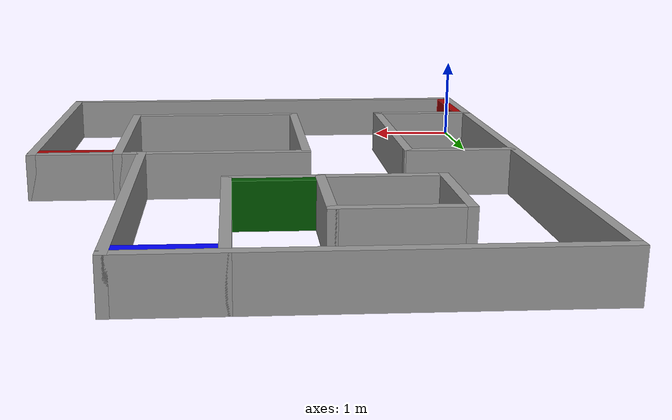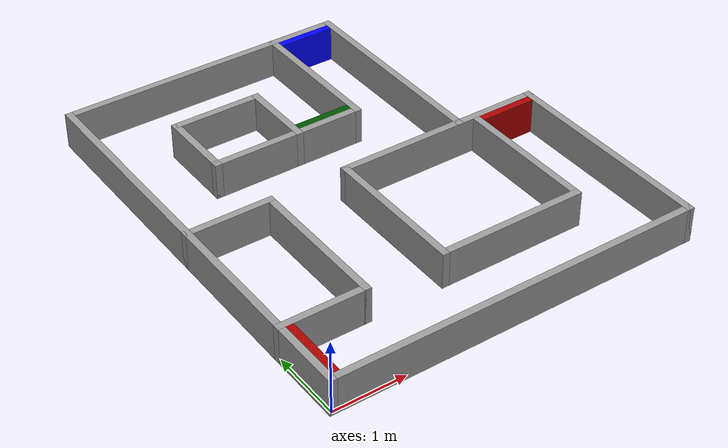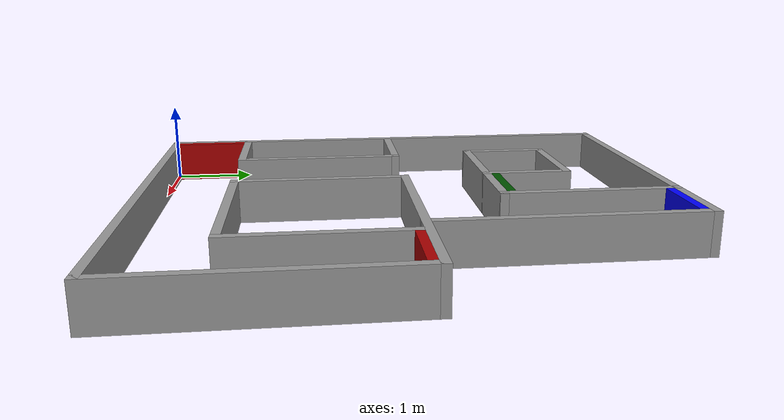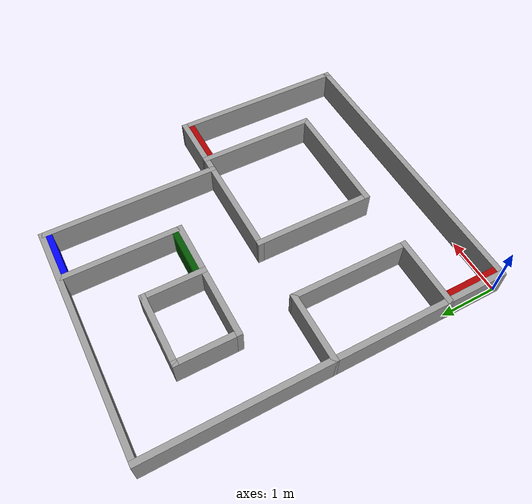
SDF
<?xml version='1.0'?>
<sdf version='1.6'>
  <model name='Bot_Map_3'>
    <pose frame=''>2.575 3 0 0 -0 0</pose>
    <link name='Wall_103'>
      <collision name='Wall_103_Collision'>
        <geometry>
          <box>
            <size>1.25 0.1 0.5</size>
          </box>
        </geometry>
        <pose frame=''>0 0 0.25 0 -0 0</pose>
      </collision>
      <visual name='Wall_103_Visual'>
        <pose frame=''>0 0 0.25 0 -0 0</pose>
        <geometry>
          <box>
            <size>1.25 0.1 0.5</size>
          </box>
        </geometry>
        <material>
          <script>
            <uri>file://media/materials/scripts/gazebo.material</uri>
            <name>Gazebo/Grey</name>
          </script>
          <ambient>0 0 0 1</ambient>
        </material>
        <meta>
          <layer>0</layer>
        </meta>
      </visual>
      <pose frame=''>-2 0 0 0 -0 0</pose>
    </link>
    <link name='Wall_105'>
      <collision name='Wall_105_Collision'>
        <geometry>
          <box>
            <size>1.1 0.1 0.5</size>
          </box>
        </geometry>
        <pose frame=''>0 0 0.25 0 -0 0</pose>
      </collision>
      <visual name='Wall_105_Visual'>
        <pose frame=''>0 0 0.25 0 -0 0</pose>
        <geometry>
          <box>
            <size>1.1 0.1 0.5</size>
          </box>
        </geometry>
        <material>
          <script>
            <uri>file://media/materials/scripts/gazebo.material</uri>
            <name>Gazebo/Grey</name>
          </script>
          <ambient>0 0 0 1</ambient>
        </material>
        <meta>
          <layer>0</layer>
        </meta>
      </visual>
      <pose frame=''>-0.375 1.5 0 0 0 -1.5708</pose>
    </link>
    <link name='Wall_107'>
      <collision name='Wall_107_Collision'>
        <geometry>
          <box>
            <size>3 0.1 0.5</size>
          </box>
        </geometry>
        <pose frame=''>0 0 0.25 0 -0 0</pose>
      </collision>
      <visual name='Wall_107_Visual'>
        <pose frame=''>0 0 0.25 0 -0 0</pose>
        <geometry>
          <box>
            <size>3 0.1 0.5</size>
          </box>
        </geometry>
        <material>
          <script>
            <uri>file://media/materials/scripts/gazebo.material</uri>
            <name>Gazebo/Grey</name>
          </script>
          <ambient>0 0 0 1</ambient>
        </material>
        <meta>
          <layer>0</layer>
        </meta>
      </visual>
      <pose frame=''>1.125 0 0 0 -0 0</pose>
    </link>
    <link name='Wall_109'>
      <collision name='Wall_109_Collision'>
        <geometry>
          <box>
            <size>2.1 0.1 0.5</size>
          </box>
        </geometry>
        <pose frame=''>0 0 0.25 0 -0 0</pose>
      </collision>
      <visual name='Wall_109_Visual'>
        <pose frame=''>0 0 0.25 0 -0 0</pose>
        <geometry>
          <box>
            <size>2.1 0.1 0.5</size>
          </box>
        </geometry>
        <material>
          <script>
            <uri>file://media/materials/scripts/gazebo.material</uri>
            <name>Gazebo/Grey</name>
          </script>
          <ambient>0 0 0 1</ambient>
        </material>
        <meta>
          <layer>0</layer>
        </meta>
      </visual>
      <pose frame=''>-0.325 -1 0 0 0 -1.5708</pose>
    </link>
    <link name='Wall_117'>
      <collision name='Wall_117_Collision'>
        <geometry>
          <box>
            <size>2.1 0.1 0.5</size>
          </box>
        </geometry>
        <pose frame=''>0 0 0.25 0 -0 0</pose>
      </collision>
      <visual name='Wall_117_Visual'>
        <pose frame=''>0 0 0.25 0 -0 0</pose>
        <geometry>
          <box>
            <size>2.1 0.1 0.5</size>
          </box>
        </geometry>
        <material>
          <script>
            <uri>file://media/materials/scripts/gazebo.material</uri>
            <name>Gazebo/Grey</name>
          </script>
          <ambient>0 0 0 1</ambient>
        </material>
        <meta>
          <layer>0</layer>
        </meta>
      </visual>
      <pose frame=''>1.675 -1 0 0 -0 1.5708</pose>
    </link>
    <link name='Wall_119'>
      <collision name='Wall_119_Collision'>
        <geometry>
          <box>
            <size>2.1 0.1 0.5</size>
          </box>
        </geometry>
        <pose frame=''>0 0 0.25 0 -0 0</pose>
      </collision>
      <visual name='Wall_119_Visual'>
        <pose frame=''>0 0 0.25 0 -0 0</pose>
        <geometry>
          <box>
            <size>2.1 0.1 0.5</size>
          </box>
        </geometry>
        <material>
          <script>
            <uri>file://media/materials/scripts/gazebo.material</uri>
            <name>Gazebo/Grey</name>
          </script>
          <ambient>0 0 0 1</ambient>
        </material>
        <meta>
          <layer>0</layer>
        </meta>
      </visual>
      <pose frame=''>0.675 -2 0 0 -0 0</pose>
    </link>
    <link name='Wall_125'>
      <collision name='Wall_125_Collision'>
        <geometry>
          <box>
            <size>3.1 0.1 0.5</size>
          </box>
        </geometry>
        <pose frame=''>0 0 0.25 0 -0 0</pose>
      </collision>
      <visual name='Wall_125_Visual'>
        <pose frame=''>0 0 0.25 0 -0 0</pose>
        <geometry>
          <box>
            <size>3.1 0.1 0.5</size>
          </box>
        </geometry>
        <material>
          <script>
            <uri>file://media/materials/scripts/gazebo.material</uri>
            <name>Gazebo/Grey</name>
          </script>
          <ambient>0 0 0 1</ambient>
        </material>
        <meta>
          <layer>0</layer>
        </meta>
      </visual>
      <pose frame=''>1.425 1.5 0 0 -0 1.5708</pose>
    </link>
    <link name='Wall_127'>
      <collision name='Wall_127_Collision'>
        <geometry>
          <box>
            <size>3.1 0.1 0.5</size>
          </box>
        </geometry>
        <pose frame=''>0 0 0.25 0 -0 0</pose>
      </collision>
      <visual name='Wall_127_Visual'>
        <pose frame=''>0 0 0.25 0 -0 0</pose>
        <geometry>
          <box>
            <size>3.1 0.1 0.5</size>
          </box>
        </geometry>
        <material>
          <script>
            <uri>file://media/materials/scripts/gazebo.material</uri>
            <name>Gazebo/Grey</name>
          </script>
          <ambient>0 0 0 1</ambient>
        </material>
        <meta>
          <layer>0</layer>
        </meta>
      </visual>
      <pose frame=''>2.575 -1.5 0 0 -0 1.5708</pose>
    </link>
    <link name='Wall_44'>
      <collision name='Wall_44_Collision'>
        <geometry>
          <box>
            <size>6.1 0.1 0.5</size>
          </box>
        </geometry>
        <pose frame=''>0 0 0.25 0 -0 0</pose>
      </collision>
      <visual name='Wall_44_Visual'>
        <pose frame=''>0 0 0.25 0 -0 0</pose>
        <geometry>
          <box>
            <size>6.1 0.1 0.5</size>
          </box>
        </geometry>
        <material>
          <script>
            <uri>file://media/materials/scripts/gazebo.material</uri>
            <name>Gazebo/Grey</name>
          </script>
          <ambient>0 0 0 1</ambient>
        </material>
        <meta>
          <layer>0</layer>
        </meta>
      </visual>
      <pose frame=''>-2.575 0 0 0 -0 1.5708</pose>
    </link>
    <link name='Wall_50'>
      <collision name='Wall_50_Collision'>
        <geometry>
          <box>
            <size>1.25 0.1 0.5</size>
          </box>
        </geometry>
        <pose frame=''>0 0 0.25 0 -0 0</pose>
      </collision>
      <visual name='Wall_50_Visual'>
        <pose frame=''>0 0 0.25 0 -0 0</pose>
        <geometry>
          <box>
            <size>1.25 0.1 0.5</size>
          </box>
        </geometry>
        <material>
          <script>
            <uri>file://media/materials/scripts/gazebo.material</uri>
            <name>Gazebo/Grey</name>
          </script>
          <ambient>0 0 0 1</ambient>
        </material>
        <meta>
          <layer>0</layer>
        </meta>
      </visual>
      <pose frame=''>-2 -2 0 0 -0 0</pose>
    </link>
    <link name='Wall_56'>
      <collision name='Wall_56_Collision'>
        <geometry>
          <box>
            <size>2.1 0.1 0.5</size>
          </box>
        </geometry>
        <pose frame=''>0 0 0.25 0 -0 0</pose>
      </collision>
      <visual name='Wall_56_Visual'>
        <pose frame=''>0 0 0.25 0 -0 0</pose>
        <geometry>
          <box>
            <size>2.1 0.1 0.5</size>
          </box>
        </geometry>
        <material>
          <script>
            <uri>file://media/materials/scripts/gazebo.material</uri>
            <name>Gazebo/Grey</name>
          </script>
          <ambient>0 0 0 1</ambient>
        </material>
        <meta>
          <layer>0</layer>
        </meta>
      </visual>
      <pose frame=''>-1.425 -1 0 0 -0 1.5708</pose>
    </link>
    <link name='Wall_58'>
      <collision name='Wall_58_Collision'>
        <geometry>
          <box>
            <size>5.15 0.1 0.5</size>
          </box>
        </geometry>
        <pose frame=''>0 0 0.25 0 -0 0</pose>
      </collision>
      <visual name='Wall_58_Visual'>
        <pose frame=''>0 0 0.25 0 -0 0</pose>
        <geometry>
          <box>
            <size>5.15 0.1 0.5</size>
          </box>
        </geometry>
        <material>
          <script>
            <uri>file://media/materials/scripts/gazebo.material</uri>
            <name>Gazebo/Grey</name>
          </script>
          <ambient>0 0 0 1</ambient>
        </material>
        <meta>
          <layer>0</layer>
        </meta>
      </visual>
      <pose frame=''>0.05 -3 0 0 -0 0</pose>
    </link>
    <link name='Wall_64'>
      <collision name='Wall_64_Collision'>
        <geometry>
          <box>
            <size>4.1 0.1 0.5</size>
          </box>
        </geometry>
        <pose frame=''>0 0 0.25 0 -0 0</pose>
      </collision>
      <visual name='Wall_64_Visual'>
        <pose frame=''>0 0 0.25 0 -0 0</pose>
        <geometry>
          <box>
            <size>4.1 0.1 0.5</size>
          </box>
        </geometry>
        <material>
          <script>
            <uri>file://media/materials/scripts/gazebo.material</uri>
            <name>Gazebo/Grey</name>
          </script>
          <ambient>0 0 0 1</ambient>
        </material>
        <meta>
          <layer>0</layer>
        </meta>
      </visual>
      <pose frame=''>-0.575 3 0 0 -0 0</pose>
    </link>
    <link name='Wall_66'>
      <collision name='Wall_66_Collision'>
        <geometry>
          <box>
            <size>2.1 0.1 0.5</size>
          </box>
        </geometry>
        <pose frame=''>0 0 0.25 0 -0 0</pose>
      </collision>
      <visual name='Wall_66_Visual'>
        <pose frame=''>0 0 0.25 0 -0 0</pose>
        <geometry>
          <box>
            <size>2.1 0.1 0.5</size>
          </box>
        </geometry>
        <material>
          <script>
            <uri>file://media/materials/scripts/gazebo.material</uri>
            <name>Gazebo/Grey</name>
          </script>
          <ambient>0 0 0 1</ambient>
        </material>
        <meta>
          <layer>0</layer>
        </meta>
      </visual>
      <pose frame=''>0.525 2 0 0 0 -1.5708</pose>
    </link>
    <link name='Wall_68'>
      <collision name='Wall_68_Collision'>
        <geometry>
          <box>
            <size>2.2 0.1 0.5</size>
          </box>
        </geometry>
        <pose frame=''>0 0 0.25 0 -0 0</pose>
      </collision>
      <visual name='Wall_68_Visual'>
        <pose frame=''>0 0 0.25 0 -0 0</pose>
        <geometry>
          <box>
            <size>2.2 0.1 0.5</size>
          </box>
        </geometry>
        <material>
          <script>
            <uri>file://media/materials/scripts/gazebo.material</uri>
            <name>Gazebo/Grey</name>
          </script>
          <ambient>0 0 0 1</ambient>
        </material>
        <meta>
          <layer>0</layer>
        </meta>
      </visual>
      <pose frame=''>-0.525 1 0 0 -0 0</pose>
    </link>
    <link name='Wall_70'>
      <collision name='Wall_70_Collision'>
        <geometry>
          <box>
            <size>1.1 0.1 0.5</size>
          </box>
        </geometry>
        <pose frame=''>0 0 0.25 0 -0 0</pose>
      </collision>
      <visual name='Wall_70_Visual'>
        <pose frame=''>0 0 0.25 0 -0 0</pose>
        <geometry>
          <box>
            <size>1.1 0.1 0.5</size>
          </box>
        </geometry>
        <material>
          <script>
            <uri>file://media/materials/scripts/gazebo.material</uri>
            <name>Gazebo/Grey</name>
          </script>
          <ambient>0 0 0 1</ambient>
        </material>
        <meta>
          <layer>0</layer>
        </meta>
      </visual>
      <pose frame=''>-1.575 1.5 0 0 -0 1.5708</pose>
    </link>
    <link name='Wall_73'>
      <collision name='Wall_73_Collision'>
        <geometry>
          <box>
            <size>1.3 0.1 0.5</size>
          </box>
        </geometry>
        <pose frame=''>0 0 0.25 0 -0 0</pose>
      </collision>
      <visual name='Wall_73_Visual'>
        <pose frame=''>0 0 0.25 0 -0 0</pose>
        <geometry>
          <box>
            <size>1.3 0.1 0.5</size>
          </box>
        </geometry>
        <material>
          <script>
            <uri>file://media/materials/scripts/gazebo.material</uri>
            <name>Gazebo/Grey</name>
          </script>
          <ambient>0 0 0 1</ambient>
        </material>
        <meta>
          <layer>0</layer>
        </meta>
      </visual>
      <pose frame=''>-0.975 2 0 0 -0 0</pose>
    </link>
    <link name='Wall_75'>
      <collision name='Wall_75_Collision'>
        <geometry>
          <box>
            <size>1.3 0.1 0.5</size>
          </box>
        </geometry>
        <pose frame=''>0 0 0.25 0 -0 0</pose>
      </collision>
      <visual name='Wall_75_Visual'>
        <pose frame=''>0 0 0.25 0 -0 0</pose>
        <geometry>
          <box>
            <size>1.3 0.1 0.5</size>
          </box>
        </geometry>
        <material>
          <script>
            <uri>file://media/materials/scripts/gazebo.material</uri>
            <name>Gazebo/Grey</name>
          </script>
          <ambient>0 0 0 1</ambient>
        </material>
        <meta>
          <layer>0</layer>
        </meta>
      </visual>
      <pose frame=''>-0.975 2 0 0 -0 0</pose>
    </link>
    <link name='Wall_77'>
      <collision name='Wall_77_Collision'>
        <geometry>
          <box>
            <size>0.8 0.1 0.5</size>
          </box>
        </geometry>
        <pose frame=''>0 0 0.25 0 -0 0</pose>
      </collision>
      <visual name='Wall_77_Visual'>
        <pose frame=''>0 0 0.25 0 -0 0</pose>
        <geometry>
          <box>
            <size>0.8 0.1 0.5</size>
          </box>
        </geometry>
        <material>
          <script>
            <uri>file://media/materials/scripts/gazebo.material</uri>
            <name>Gazebo/Grey</name>
          </script>
          <ambient>0 0.333333 0 1</ambient>
        </material>
        <meta>
          <layer>0</layer>
        </meta>
      </visual>
      <pose frame=''>0.075 1.1 0 0 -0 0</pose>
    </link>
    <link name='Wall_90'>
      <collision name='Wall_90_Collision'>
        <geometry>
          <box>
            <size>0.9 0.1 0.5</size>
          </box>
        </geometry>
        <pose frame=''>0 0 0.25 0 -0 0</pose>
      </collision>
      <visual name='Wall_90_Visual'>
        <pose frame=''>0 0 0.25 0 -0 0</pose>
        <geometry>
          <box>
            <size>0.9 0.1 0.5</size>
          </box>
        </geometry>
        <material>
          <script>
            <uri>file://media/materials/scripts/gazebo.material</uri>
            <name>Gazebo/Grey</name>
          </script>
          <ambient>0.666667 0 0 1</ambient>
        </material>
        <meta>
          <layer>0</layer>
        </meta>
      </visual>
      <pose frame=''>-2.475 -2.5 0 0 -0 1.5708</pose>
    </link>
    <link name='Wall_92'>
      <collision name='Wall_92_Collision'>
        <geometry>
          <box>
            <size>0.8 0.1 0.5</size>
          </box>
        </geometry>
        <pose frame=''>0 0 0.25 0 -0 0</pose>
      </collision>
      <visual name='Wall_92_Visual'>
        <pose frame=''>0 0 0.25 0 -0 0</pose>
        <geometry>
          <box>
            <size>0.8 0.1 0.5</size>
          </box>
        </geometry>
        <material>
          <script>
            <uri>file://media/materials/scripts/gazebo.material</uri>
            <name>Gazebo/Grey</name>
          </script>
          <ambient>0.666667 0 0 1</ambient>
        </material>
        <meta>
          <layer>0</layer>
        </meta>
      </visual>
      <pose frame=''>2.125 -0.1 0 0 -0 0</pose>
    </link>
    <link name='Wall_96'>
      <collision name='Wall_96_Collision'>
        <geometry>
          <box>
            <size>0.8 0.1 0.5</size>
          </box>
        </geometry>
        <pose frame=''>0 0 0.25 0 -0 0</pose>
      </collision>
      <visual name='Wall_96_Visual'>
        <pose frame=''>0 0 0.25 0 -0 0</pose>
        <geometry>
          <box>
            <size>0.8 0.1 0.5</size>
          </box>
        </geometry>
        <material>
          <script>
            <uri>file://media/materials/scripts/gazebo.material</uri>
            <name>Gazebo/Grey</name>
          </script>
          <ambient>0 0 1 1</ambient>
        </material>
        <meta>
          <layer>0</layer>
        </meta>
      </visual>
      <pose frame=''>0.975 2.9 0 0 -0 0</pose>
    </link>
    <static>1</static>
  </model>
</sdf>
